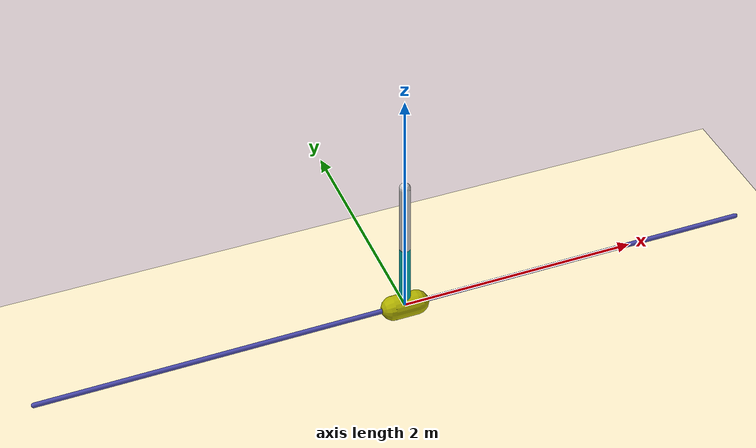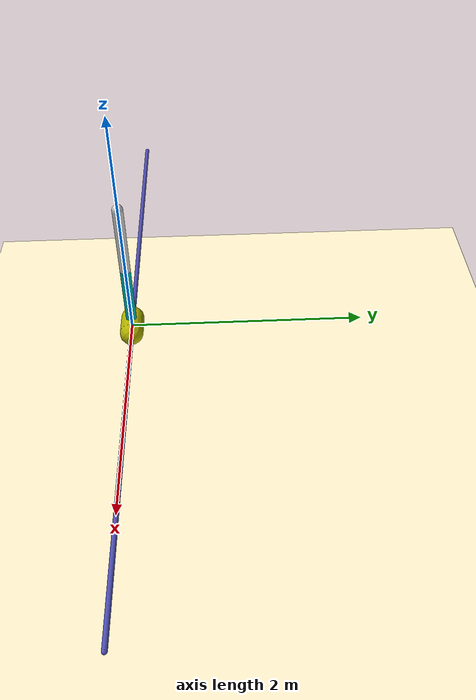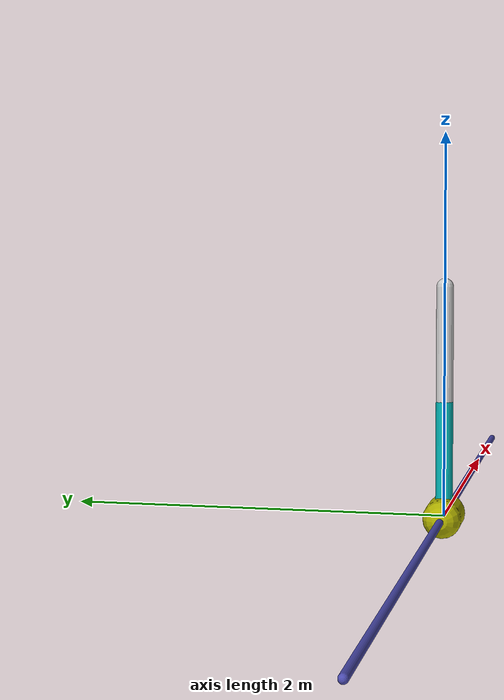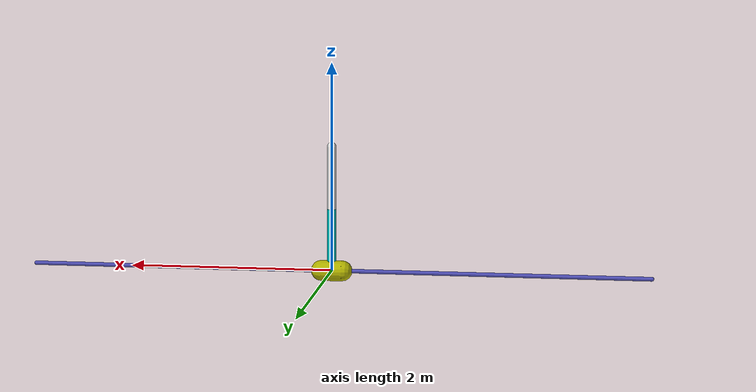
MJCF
<mujoco model="cartpole">
  <compiler coordinate="local" inertiafromgeom="true"/>
  <custom>
    <numeric data="2" name="frame_skip"/>
  </custom>
  <default>
    <joint damping="0.05"/>
    <geom contype="0" friction="1 0.1 0.1" rgba="0.7 0.7 0 1"/>
  </default>
  <visual>
    <scale forcewidth="0.2"/>
    <rgba fog="1 1 0 0.5" force="1 0.5 0.5 0.8"/>
  </visual>
  <option gravity="1e-5 0 -9.81" integrator="RK4" timestep="0.01"/>
  <size nstack="3000"/>
  <worldbody>
    <geom name="floor" pos="0 0 -3.0" rgba="1 0.95 0.8 0.4" size="40 40 40" type="plane"/>
    <geom name="rail" pos="0 0 0" quat="0.707 0 0.707 0" rgba="0.3 0.3 0.7 1" size="0.02 3" type="capsule"/>
    <body name="cart" pos="0 0 0">
      <joint axis="1 0 0" limited="true" margin="0.01" name="slider" pos="0 0 0" range="-1 1" type="slide"/>
      <geom name="cart" pos="0 0 0" quat="0.707 0 0.707 0" size="0.1 0.1" type="capsule"/>
      <body name="pole" pos="0 0 0">
        <joint axis="0 1 0" name="hinge" pos="0 0 0" type="hinge"/>
        <geom fromto="0 0 0 0 0 0.6" name="cpole" rgba="0 0.7 0.7 1" size="0.045 0.3" type="capsule"/>
        <body name="pole2" pos="0 0 0.6">
          <joint axis="0 1 0" name="hinge2" pos="0 0 0" type="hinge"/>
          <geom fromto="0 0 0 0 0 0.6" name="cpole2" rgba="0.8 0.8 0.8 1" size="0.045 0.3" type="capsule"/>
          <site name="tip" pos="0 0 .6" size="0.01 0.01"/>
        </body>
      </body>
    </body>
  </worldbody>
  <actuator>
    <motor ctrllimited="true" ctrlrange="-1 1" gear="500" joint="slider" name="slide"/>
  </actuator>
</mujoco>
